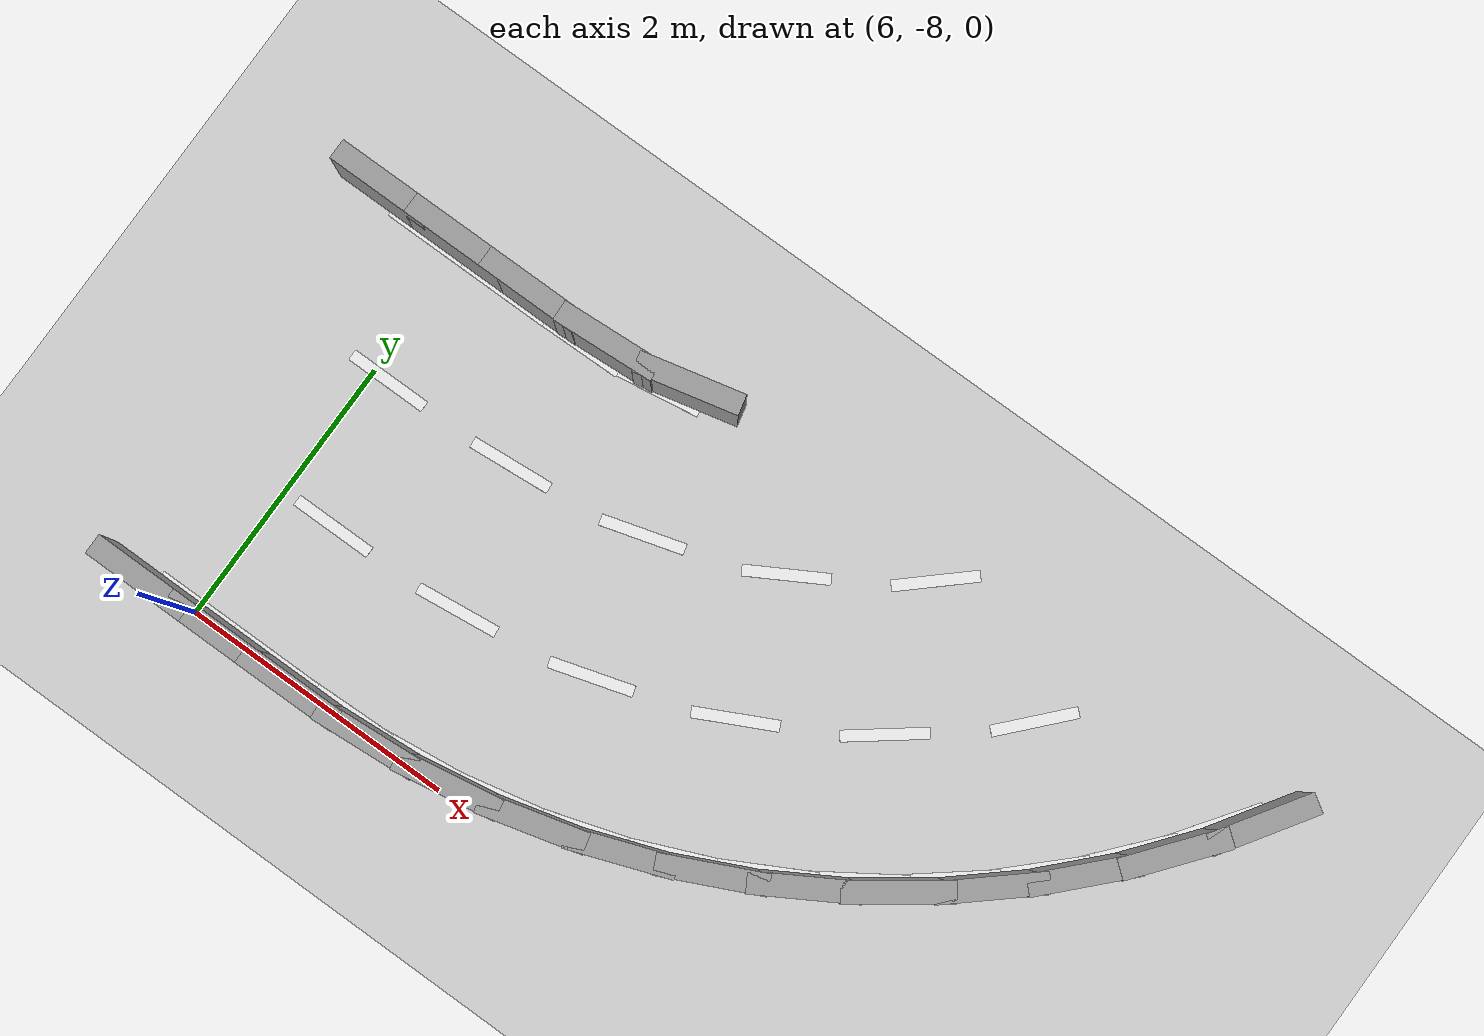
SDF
<sdf version="1.7">
 <world name="default">
  <model name="ground_plane">
   <static>1</static>
   <link name="link">
    <collision name="collision">
     <geometry><plane><normal>0 0 1</normal><size>100 100</size></plane></geometry>
     <surface><friction><ode><mu>100</mu><mu2>50</mu2></ode></friction></surface>
    </collision>
    <visual name="visual">
     <cast_shadows>0</cast_shadows>
     <geometry><plane><normal>0 0 1</normal><size>100 100</size></plane></geometry>
     <material>
      <script><uri>file://media/materials/scripts/gazebo.material</uri><name>Gazebo/Grey</name></script>
     </material>
    </visual>
   </link>
  </model>
  <model name="superspeedway">
   <link name="Wall_76">
    <collision name="Wall_76_Collision">
     <geometry><box><size>0.7500 0.1500 0.6000</size></box></geometry>
     <pose>0 0 0.3000 0 -0 0</pose>
    </collision>
    <visual name="Wall_76_Visual">
     <pose>0 0 0.3000 0 -0 0</pose>
     <geometry><box><size>0.7500 0.1500 0.6000</size></box></geometry>
     <material>
      <script><uri>file://media/materials/scripts/gazebo.material</uri><name>Gazebo/Grey</name></script>
      <ambient>1 1 1 1</ambient>
     </material>
    </visual>
    <pose>5.4066 -5.0000 0 0 -0 0.00000</pose>
   </link>
   <link name="Wall_77">
    <collision name="Wall_77_Collision">
     <geometry><box><size>0.7500 0.1500 0.6000</size></box></geometry>
     <pose>0 0 0.3000 0 -0 0</pose>
    </collision>
    <visual name="Wall_77_Visual">
     <pose>0 0 0.3000 0 -0 0</pose>
     <geometry><box><size>0.7500 0.1500 0.6000</size></box></geometry>
     <material>
      <script><uri>file://media/materials/scripts/gazebo.material</uri><name>Gazebo/Grey</name></script>
      <ambient>1 1 1 1</ambient>
     </material>
    </visual>
    <pose>6.0066 -5.0000 0 0 -0 0.00000</pose>
   </link>
   <link name="Wall_78">
    <collision name="Wall_78_Collision">
     <geometry><box><size>0.7500 0.1500 0.6000</size></box></geometry>
     <pose>0 0 0.3000 0 -0 0</pose>
    </collision>
    <visual name="Wall_78_Visual">
     <pose>0 0 0.3000 0 -0 0</pose>
     <geometry><box><size>0.7500 0.1500 0.6000</size></box></geometry>
     <material>
      <script><uri>file://media/materials/scripts/gazebo.material</uri><name>Gazebo/Grey</name></script>
      <ambient>1 1 1 1</ambient>
     </material>
    </visual>
    <pose>6.6066 -5.0000 0 0 -0 0.00000</pose>
   </link>
   <link name="Wall_79">
    <collision name="Wall_79_Collision">
     <geometry><box><size>0.7494 0.1500 0.6000</size></box></geometry>
     <pose>0 0 0.3000 0 -0 0</pose>
    </collision>
    <visual name="Wall_79_Visual">
     <pose>0 0 0.3000 0 -0 0</pose>
     <geometry><box><size>0.7494 0.1500 0.6000</size></box></geometry>
     <material>
      <script><uri>file://media/materials/scripts/gazebo.material</uri><name>Gazebo/Grey</name></script>
      <ambient>1 1 1 1</ambient>
     </material>
    </visual>
    <pose>7.2057 -4.9817 0 0 -0 0.06112</pose>
   </link>
   <link name="Wall_80">
    <collision name="Wall_80_Collision">
     <geometry><box><size>0.7493 0.1500 0.6000</size></box></geometry>
     <pose>0 0 0.3000 0 -0 0</pose>
    </collision>
    <visual name="Wall_80_Visual">
     <pose>0 0 0.3000 0 -0 0</pose>
     <geometry><box><size>0.7493 0.1500 0.6000</size></box></geometry>
     <material>
      <script><uri>file://media/materials/scripts/gazebo.material</uri><name>Gazebo/Grey</name></script>
      <ambient>1 1 1 1</ambient>
     </material>
    </visual>
    <pose>7.7966 -4.8949 0 0 -0 0.23047</pose>
   </link>
   <link name="Wall_193">
    <collision name="Wall_193_Collision">
     <geometry><box><size>0.7500 0.1500 0.6000</size></box></geometry>
     <pose>0 0 0.3000 0 -0 0</pose>
    </collision>
    <visual name="Wall_193_Visual">
     <pose>0 0 0.3000 0 -0 0</pose>
     <geometry><box><size>0.7500 0.1500 0.6000</size></box></geometry>
     <material>
      <script><uri>file://media/materials/scripts/gazebo.material</uri><name>Gazebo/Grey</name></script>
      <ambient>1 1 1 1</ambient>
     </material>
    </visual>
    <pose>5.6695 -8.0000 0 0 -0 0.00000</pose>
   </link>
   <link name="Wall_194">
    <collision name="Wall_194_Collision">
     <geometry><box><size>0.7500 0.1500 0.6000</size></box></geometry>
     <pose>0 0 0.3000 0 -0 0</pose>
    </collision>
    <visual name="Wall_194_Visual">
     <pose>0 0 0.3000 0 -0 0</pose>
     <geometry><box><size>0.7500 0.1500 0.6000</size></box></geometry>
     <material>
      <script><uri>file://media/materials/scripts/gazebo.material</uri><name>Gazebo/Grey</name></script>
      <ambient>1 1 1 1</ambient>
     </material>
    </visual>
    <pose>6.2695 -8.0000 0 0 -0 0.00000</pose>
   </link>
   <link name="Wall_195">
    <collision name="Wall_195_Collision">
     <geometry><box><size>0.7500 0.1500 0.6000</size></box></geometry>
     <pose>0 0 0.3000 0 -0 0</pose>
    </collision>
    <visual name="Wall_195_Visual">
     <pose>0 0 0.3000 0 -0 0</pose>
     <geometry><box><size>0.7500 0.1500 0.6000</size></box></geometry>
     <material>
      <script><uri>file://media/materials/scripts/gazebo.material</uri><name>Gazebo/Grey</name></script>
      <ambient>1 1 1 1</ambient>
     </material>
    </visual>
    <pose>6.8695 -7.9989 0 0 -0 0.00370</pose>
   </link>
   <link name="Wall_196">
    <collision name="Wall_196_Collision">
     <geometry><box><size>0.7498 0.1500 0.6000</size></box></geometry>
     <pose>0 0 0.3000 0 -0 0</pose>
    </collision>
    <visual name="Wall_196_Visual">
     <pose>0 0 0.3000 0 -0 0</pose>
     <geometry><box><size>0.7498 0.1500 0.6000</size></box></geometry>
     <material>
      <script><uri>file://media/materials/scripts/gazebo.material</uri><name>Gazebo/Grey</name></script>
      <ambient>1 1 1 1</ambient>
     </material>
    </visual>
    <pose>7.4686 -7.9761 0 0 -0 0.07224</pose>
   </link>
   <link name="Wall_197">
    <collision name="Wall_197_Collision">
     <geometry><box><size>0.7498 0.1500 0.6000</size></box></geometry>
     <pose>0 0 0.3000 0 -0 0</pose>
    </collision>
    <visual name="Wall_197_Visual">
     <pose>0 0 0.3000 0 -0 0</pose>
     <geometry><box><size>0.7498 0.1500 0.6000</size></box></geometry>
     <material>
      <script><uri>file://media/materials/scripts/gazebo.material</uri><name>Gazebo/Grey</name></script>
      <ambient>1 1 1 1</ambient>
     </material>
    </visual>
    <pose>8.0636 -7.9054 0 0 -0 0.16454</pose>
   </link>
   <link name="Wall_198">
    <collision name="Wall_198_Collision">
     <geometry><box><size>0.7498 0.1500 0.6000</size></box></geometry>
     <pose>0 0 0.3000 0 -0 0</pose>
    </collision>
    <visual name="Wall_198_Visual">
     <pose>0 0 0.3000 0 -0 0</pose>
     <geometry><box><size>0.7498 0.1500 0.6000</size></box></geometry>
     <material>
      <script><uri>file://media/materials/scripts/gazebo.material</uri><name>Gazebo/Grey</name></script>
      <ambient>1 1 1 1</ambient>
     </material>
    </visual>
    <pose>8.6495 -7.7801 0 0 -0 0.25686</pose>
   </link>
   <link name="Wall_199">
    <collision name="Wall_199_Collision">
     <geometry><box><size>0.7498 0.1500 0.6000</size></box></geometry>
     <pose>0 0 0.3000 0 -0 0</pose>
    </collision>
    <visual name="Wall_199_Visual">
     <pose>0 0 0.3000 0 -0 0</pose>
     <geometry><box><size>0.7498 0.1500 0.6000</size></box></geometry>
     <material>
      <script><uri>file://media/materials/scripts/gazebo.material</uri><name>Gazebo/Grey</name></script>
      <ambient>1 1 1 1</ambient>
     </material>
    </visual>
    <pose>9.2213 -7.6013 0 0 -0 0.34915</pose>
   </link>
   <link name="Wall_200">
    <collision name="Wall_200_Collision">
     <geometry><box><size>0.7498 0.1500 0.6000</size></box></geometry>
     <pose>0 0 0.3000 0 -0 0</pose>
    </collision>
    <visual name="Wall_200_Visual">
     <pose>0 0 0.3000 0 -0 0</pose>
     <geometry><box><size>0.7498 0.1500 0.6000</size></box></geometry>
     <material>
      <script><uri>file://media/materials/scripts/gazebo.material</uri><name>Gazebo/Grey</name></script>
      <ambient>1 1 1 1</ambient>
     </material>
    </visual>
    <pose>9.7743 -7.3706 0 0 -0 0.44147</pose>
   </link>
   <link name="Wall_201">
    <collision name="Wall_201_Collision">
     <geometry><box><size>0.7498 0.1500 0.6000</size></box></geometry>
     <pose>0 0 0.3000 0 -0 0</pose>
    </collision>
    <visual name="Wall_201_Visual">
     <pose>0 0 0.3000 0 -0 0</pose>
     <geometry><box><size>0.7498 0.1500 0.6000</size></box></geometry>
     <material>
      <script><uri>file://media/materials/scripts/gazebo.material</uri><name>Gazebo/Grey</name></script>
      <ambient>1 1 1 1</ambient>
     </material>
    </visual>
    <pose>10.3036 -7.0898 0 0 -0 0.53376</pose>
   </link>
   <link name="Wall_202">
    <collision name="Wall_202_Collision">
     <geometry><box><size>0.7498 0.1500 0.6000</size></box></geometry>
     <pose>0 0 0.3000 0 -0 0</pose>
    </collision>
    <visual name="Wall_202_Visual">
     <pose>0 0 0.3000 0 -0 0</pose>
     <geometry><box><size>0.7498 0.1500 0.6000</size></box></geometry>
     <material>
      <script><uri>file://media/materials/scripts/gazebo.material</uri><name>Gazebo/Grey</name></script>
      <ambient>1 1 1 1</ambient>
     </material>
    </visual>
    <pose>10.8048 -6.7615 0 0 -0 0.62609</pose>
   </link>
   <link name="Wall_203">
    <collision name="Wall_203_Collision">
     <geometry><box><size>0.7498 0.1500 0.6000</size></box></geometry>
     <pose>0 0 0.3000 0 -0 0</pose>
    </collision>
    <visual name="Wall_203_Visual">
     <pose>0 0 0.3000 0 -0 0</pose>
     <geometry><box><size>0.7498 0.1500 0.6000</size></box></geometry>
     <material>
      <script><uri>file://media/materials/scripts/gazebo.material</uri><name>Gazebo/Grey</name></script>
      <ambient>1 1 1 1</ambient>
     </material>
    </visual>
    <pose>11.2736 -6.3884 0 0 -0 0.71838</pose>
   </link>
   <link name="Wall_204">
    <collision name="Wall_204_Collision">
     <geometry><box><size>0.7498 0.1500 0.6000</size></box></geometry>
     <pose>0 0 0.3000 0 -0 0</pose>
    </collision>
    <visual name="Wall_204_Visual">
     <pose>0 0 0.3000 0 -0 0</pose>
     <geometry><box><size>0.7498 0.1500 0.6000</size></box></geometry>
     <material>
      <script><uri>file://media/materials/scripts/gazebo.material</uri><name>Gazebo/Grey</name></script>
      <ambient>1 1 1 1</ambient>
     </material>
    </visual>
    <pose>11.7060 -5.9737 0 0 -0 0.81071</pose>
   </link>
   <link name="Wall_205">
    <collision name="Wall_205_Collision">
     <geometry><box><size>0.7498 0.1500 0.6000</size></box></geometry>
     <pose>0 0 0.3000 0 -0 0</pose>
    </collision>
    <visual name="Wall_205_Visual">
     <pose>0 0 0.3000 0 -0 0</pose>
     <geometry><box><size>0.7498 0.1500 0.6000</size></box></geometry>
     <material>
      <script><uri>file://media/materials/scripts/gazebo.material</uri><name>Gazebo/Grey</name></script>
      <ambient>1 1 1 1</ambient>
     </material>
    </visual>
    <pose>12.0983 -5.5209 0 0 -0 0.90299</pose>
   </link>
   <link name="Wall_206">
    <collision name="Wall_206_Collision">
     <geometry><box><size>0.7498 0.1500 0.6000</size></box></geometry>
     <pose>0 0 0.3000 0 -0 0</pose>
    </collision>
    <visual name="Wall_206_Visual">
     <pose>0 0 0.3000 0 -0 0</pose>
     <geometry><box><size>0.7498 0.1500 0.6000</size></box></geometry>
     <material>
      <script><uri>file://media/materials/scripts/gazebo.material</uri><name>Gazebo/Grey</name></script>
      <ambient>1 1 1 1</ambient>
     </material>
    </visual>
    <pose>12.4472 -5.0338 0 0 -0 0.99533</pose>
   </link>
   <link name="Paint_77">
    <visual name="Paint_77_Visual">
     <pose>0 0 0.0020 0 -0 0</pose>
     <geometry><box><size>0.6800 0.0800 0.0040</size></box></geometry>
     <material>
      <script><uri>file://media/materials/scripts/gazebo.material</uri><name>Gazebo/White</name></script>
      <ambient>1 1 1 1</ambient>
     </material>
    </visual>
    <pose>5.7833 -5.0600 0 0 -0 0.00000</pose>
   </link>
   <link name="Paint_78">
    <visual name="Paint_78_Visual">
     <pose>0 0 0.0020 0 -0 0</pose>
     <geometry><box><size>0.6800 0.0800 0.0040</size></box></geometry>
     <material>
      <script><uri>file://media/materials/scripts/gazebo.material</uri><name>Gazebo/White</name></script>
      <ambient>1 1 1 1</ambient>
     </material>
    </visual>
    <pose>6.3833 -5.0599 0 0 -0 0.00038</pose>
   </link>
   <link name="Paint_79">
    <visual name="Paint_79_Visual">
     <pose>0 0 0.0020 0 -0 0</pose>
     <geometry><box><size>0.6798 0.0800 0.0040</size></box></geometry>
     <material>
      <script><uri>file://media/materials/scripts/gazebo.material</uri><name>Gazebo/White</name></script>
      <ambient>1 1 1 1</ambient>
     </material>
    </visual>
    <pose>6.9831 -5.0543 0 0 -0 0.01612</pose>
   </link>
   <link name="Paint_80">
    <visual name="Paint_80_Visual">
     <pose>0 0 0.0020 0 -0 0</pose>
     <geometry><box><size>0.6797 0.0800 0.0040</size></box></geometry>
     <material>
      <script><uri>file://media/materials/scripts/gazebo.material</uri><name>Gazebo/White</name></script>
      <ambient>1 1 1 1</ambient>
     </material>
    </visual>
    <pose>7.5789 -4.9984 0 0 -0 0.15282</pose>
   </link>
   <link name="Paint_194">
    <visual name="Paint_194_Visual">
     <pose>0 0 0.0020 0 -0 0</pose>
     <geometry><box><size>0.6800 0.0800 0.0040</size></box></geometry>
     <material>
      <script><uri>file://media/materials/scripts/gazebo.material</uri><name>Gazebo/White</name></script>
      <ambient>1 1 1 1</ambient>
     </material>
    </visual>
    <pose>6.0033 -7.9400 0 0 -0 0.00000</pose>
   </link>
   <link name="Paint_195">
    <visual name="Paint_195_Visual">
     <pose>0 0 0.0020 0 -0 0</pose>
     <geometry><box><size>0.6800 0.0800 0.0040</size></box></geometry>
     <material>
      <script><uri>file://media/materials/scripts/gazebo.material</uri><name>Gazebo/White</name></script>
      <ambient>1 1 1 1</ambient>
     </material>
    </visual>
    <pose>6.6033 -7.9398 0 0 -0 0.00049</pose>
   </link>
   <link name="Paint_196">
    <visual name="Paint_196_Visual">
     <pose>0 0 0.0020 0 -0 0</pose>
     <geometry><box><size>0.6800 0.0800 0.0040</size></box></geometry>
     <material>
      <script><uri>file://media/materials/scripts/gazebo.material</uri><name>Gazebo/White</name></script>
      <ambient>1 1 1 1</ambient>
     </material>
    </visual>
    <pose>7.2031 -7.9301 0 0 -0 0.02817</pose>
   </link>
   <link name="Paint_197">
    <visual name="Paint_197_Visual">
     <pose>0 0 0.0020 0 -0 0</pose>
     <geometry><box><size>0.6800 0.0800 0.0040</size></box></geometry>
     <material>
      <script><uri>file://media/materials/scripts/gazebo.material</uri><name>Gazebo/White</name></script>
      <ambient>1 1 1 1</ambient>
     </material>
    </visual>
    <pose>7.8006 -7.8826 0 0 -0 0.11858</pose>
   </link>
   <link name="Paint_198">
    <visual name="Paint_198_Visual">
     <pose>0 0 0.0020 0 -0 0</pose>
     <geometry><box><size>0.6800 0.0800 0.0040</size></box></geometry>
     <material>
      <script><uri>file://media/materials/scripts/gazebo.material</uri><name>Gazebo/White</name></script>
      <ambient>1 1 1 1</ambient>
     </material>
    </visual>
    <pose>8.3911 -7.7804 0 0 -0 0.21176</pose>
   </link>
   <link name="Paint_199">
    <visual name="Paint_199_Visual">
     <pose>0 0 0.0020 0 -0 0</pose>
     <geometry><box><size>0.6799 0.0800 0.0040</size></box></geometry>
     <material>
      <script><uri>file://media/materials/scripts/gazebo.material</uri><name>Gazebo/White</name></script>
      <ambient>1 1 1 1</ambient>
     </material>
    </visual>
    <pose>8.9696 -7.6236 0 0 -0 0.30500</pose>
   </link>
   <link name="Paint_200">
    <visual name="Paint_200_Visual">
     <pose>0 0 0.0020 0 -0 0</pose>
     <geometry><box><size>0.6799 0.0800 0.0040</size></box></geometry>
     <material>
      <script><uri>file://media/materials/scripts/gazebo.material</uri><name>Gazebo/White</name></script>
      <ambient>1 1 1 1</ambient>
     </material>
    </visual>
    <pose>9.5309 -7.4137 0 0 -0 0.39819</pose>
   </link>
   <link name="Paint_201">
    <visual name="Paint_201_Visual">
     <pose>0 0 0.0020 0 -0 0</pose>
     <geometry><box><size>0.6799 0.0800 0.0040</size></box></geometry>
     <material>
      <script><uri>file://media/materials/scripts/gazebo.material</uri><name>Gazebo/White</name></script>
      <ambient>1 1 1 1</ambient>
     </material>
    </visual>
    <pose>10.0703 -7.1525 0 0 -0 0.49137</pose>
   </link>
   <link name="Paint_202">
    <visual name="Paint_202_Visual">
     <pose>0 0 0.0020 0 -0 0</pose>
     <geometry><box><size>0.6799 0.0800 0.0040</size></box></geometry>
     <material>
      <script><uri>file://media/materials/scripts/gazebo.material</uri><name>Gazebo/White</name></script>
      <ambient>1 1 1 1</ambient>
     </material>
    </visual>
    <pose>10.5830 -6.8423 0 0 -0 0.58459</pose>
   </link>
   <link name="Paint_203">
    <visual name="Paint_203_Visual">
     <pose>0 0 0.0020 0 -0 0</pose>
     <geometry><box><size>0.6799 0.0800 0.0040</size></box></geometry>
     <material>
      <script><uri>file://media/materials/scripts/gazebo.material</uri><name>Gazebo/White</name></script>
      <ambient>1 1 1 1</ambient>
     </material>
    </visual>
    <pose>11.0647 -6.4856 0 0 -0 0.67780</pose>
   </link>
   <link name="Paint_204">
    <visual name="Paint_204_Visual">
     <pose>0 0 0.0020 0 -0 0</pose>
     <geometry><box><size>0.6799 0.0800 0.0040</size></box></geometry>
     <material>
      <script><uri>file://media/materials/scripts/gazebo.material</uri><name>Gazebo/White</name></script>
      <ambient>1 1 1 1</ambient>
     </material>
    </visual>
    <pose>11.5110 -6.0857 0 0 -0 0.77098</pose>
   </link>
   <link name="Paint_205">
    <visual name="Paint_205_Visual">
     <pose>0 0 0.0020 0 -0 0</pose>
     <geometry><box><size>0.6799 0.0800 0.0040</size></box></geometry>
     <material>
      <script><uri>file://media/materials/scripts/gazebo.material</uri><name>Gazebo/White</name></script>
      <ambient>1 1 1 1</ambient>
     </material>
    </visual>
    <pose>11.9182 -5.6459 0 0 -0 0.86418</pose>
   </link>
   <link name="Paint_206">
    <visual name="Paint_206_Visual">
     <pose>0 0 0.0020 0 -0 0</pose>
     <geometry><box><size>0.6799 0.0800 0.0040</size></box></geometry>
     <material>
      <script><uri>file://media/materials/scripts/gazebo.material</uri><name>Gazebo/White</name></script>
      <ambient>1 1 1 1</ambient>
     </material>
    </visual>
    <pose>12.2827 -5.1702 0 0 -0 0.95741</pose>
   </link>
   <link name="Paint_270">
    <visual name="Paint_270_Visual">
     <pose>0 0 0.0020 0 -0 0</pose>
     <geometry><box><size>0.6000 0.0800 0.0040</size></box></geometry>
     <material>
      <script><uri>file://media/materials/scripts/gazebo.material</uri><name>Gazebo/White</name></script>
      <ambient>1 1 1 1</ambient>
     </material>
    </visual>
    <pose>6.1100 -6.0000 0 0 -0 0.00000</pose>
   </link>
   <link name="Paint_271">
    <visual name="Paint_271_Visual">
     <pose>0 0 0.0020 0 -0 0</pose>
     <geometry><box><size>0.6000 0.0800 0.0040</size></box></geometry>
     <material>
      <script><uri>file://media/materials/scripts/gazebo.material</uri><name>Gazebo/White</name></script>
      <ambient>1 1 1 1</ambient>
     </material>
    </visual>
    <pose>7.1089 -5.9754 0 0 -0 0.08213</pose>
   </link>
   <link name="Paint_272">
    <visual name="Paint_272_Visual">
     <pose>0 0 0.0020 0 -0 0</pose>
     <geometry><box><size>0.6000 0.0800 0.0040</size></box></geometry>
     <material>
      <script><uri>file://media/materials/scripts/gazebo.material</uri><name>Gazebo/White</name></script>
      <ambient>1 1 1 1</ambient>
     </material>
    </visual>
    <pose>8.0925 -5.8343 0 0 -0 0.28322</pose>
   </link>
   <link name="Paint_273">
    <visual name="Paint_273_Visual">
     <pose>0 0 0.0020 0 -0 0</pose>
     <geometry><box><size>0.6000 0.0800 0.0040</size></box></geometry>
     <material>
      <script><uri>file://media/materials/scripts/gazebo.material</uri><name>Gazebo/White</name></script>
      <ambient>1 1 1 1</ambient>
     </material>
    </visual>
    <pose>9.0225 -5.4900 0 0 -0 0.52103</pose>
   </link>
   <link name="Paint_274">
    <visual name="Paint_274_Visual">
     <pose>0 0 0.0020 0 -0 0</pose>
     <geometry><box><size>0.6000 0.0800 0.0040</size></box></geometry>
     <material>
      <script><uri>file://media/materials/scripts/gazebo.material</uri><name>Gazebo/White</name></script>
      <ambient>1 1 1 1</ambient>
     </material>
    </visual>
    <pose>9.8499 -4.9411 0 0 -0 0.73690</pose>
   </link>
   <link name="Paint_338">
    <visual name="Paint_338_Visual">
     <pose>0 0 0.0020 0 -0 0</pose>
     <geometry><box><size>0.6000 0.0800 0.0040</size></box></geometry>
     <material>
      <script><uri>file://media/materials/scripts/gazebo.material</uri><name>Gazebo/White</name></script>
      <ambient>1 1 1 1</ambient>
     </material>
    </visual>
    <pose>6.3946 -6.9995 0 0 -0 0.00150</pose>
   </link>
   <link name="Paint_339">
    <visual name="Paint_339_Visual">
     <pose>0 0 0.0020 0 -0 0</pose>
     <geometry><box><size>0.6000 0.0800 0.0040</size></box></geometry>
     <material>
      <script><uri>file://media/materials/scripts/gazebo.material</uri><name>Gazebo/White</name></script>
      <ambient>1 1 1 1</ambient>
     </material>
    </visual>
    <pose>7.3926 -6.9642 0 0 -0 0.11448</pose>
   </link>
   <link name="Paint_340">
    <visual name="Paint_340_Visual">
     <pose>0 0 0.0020 0 -0 0</pose>
     <geometry><box><size>0.6000 0.0800 0.0040</size></box></geometry>
     <material>
      <script><uri>file://media/materials/scripts/gazebo.material</uri><name>Gazebo/White</name></script>
      <ambient>1 1 1 1</ambient>
     </material>
    </visual>
    <pose>8.3740 -6.7985 0 0 -0 0.29054</pose>
   </link>
   <link name="Paint_341">
    <visual name="Paint_341_Visual">
     <pose>0 0 0.0020 0 -0 0</pose>
     <geometry><box><size>0.6000 0.0800 0.0040</size></box></geometry>
     <material>
      <script><uri>file://media/materials/scripts/gazebo.material</uri><name>Gazebo/White</name></script>
      <ambient>1 1 1 1</ambient>
     </material>
    </visual>
    <pose>9.3105 -6.4641 0 0 -0 0.46524</pose>
   </link>
   <link name="Paint_342">
    <visual name="Paint_342_Visual">
     <pose>0 0 0.0020 0 -0 0</pose>
     <geometry><box><size>0.6000 0.0800 0.0040</size></box></geometry>
     <material>
      <script><uri>file://media/materials/scripts/gazebo.material</uri><name>Gazebo/White</name></script>
      <ambient>1 1 1 1</ambient>
     </material>
    </visual>
    <pose>10.1717 -5.9668 0 0 -0 0.66009</pose>
   </link>
   <link name="Paint_343">
    <visual name="Paint_343_Visual">
     <pose>0 0 0.0020 0 -0 0</pose>
     <geometry><box><size>0.6000 0.0800 0.0040</size></box></geometry>
     <material>
      <script><uri>file://media/materials/scripts/gazebo.material</uri><name>Gazebo/White</name></script>
      <ambient>1 1 1 1</ambient>
     </material>
    </visual>
    <pose>10.9245 -5.3158 0 0 -0 0.83633</pose>
   </link>
   <static>1</static>
  </model>
 </world>
</sdf>
